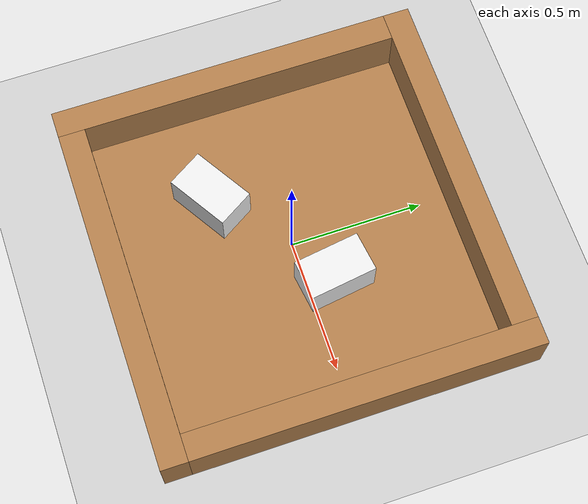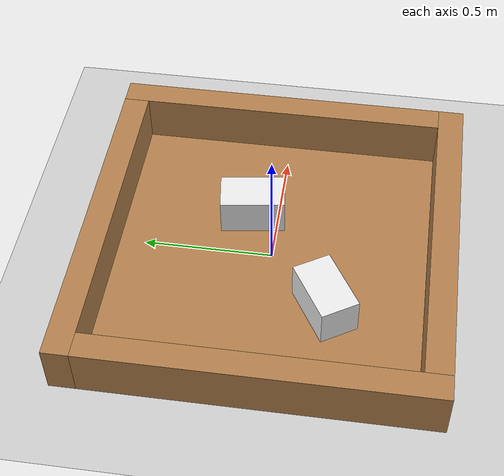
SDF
<sdf version="1.6">
 <world name="default">
  <light name="sun" type="directional">
   <pose>0 0 10 0 -0 0</pose>
   <diffuse>0.8 0.8 0.8 1</diffuse>
   <specular>0.1 0.1 0.1 1</specular>
   <attenuation>
    <range>1000</range>
    <constant>0.9</constant>
    <linear>0.01</linear>
    <quadratic>0.001</quadratic>
   </attenuation>
   <direction>-0.5 0.5 -1</direction>
  </light>
  <model name="ground_plane">
   <static>1</static>
   <link name="link">
    <collision name="collision">
     <geometry><plane><normal>0 0 1</normal><size>100 100</size></plane></geometry>
     <surface><friction><ode><mu>100</mu><mu2>50</mu2></ode></friction></surface>
    </collision>
    <visual name="visual">
     <cast_shadows>0</cast_shadows>
     <geometry><plane><normal>0 0 1</normal><size>100 100</size></plane></geometry>
     <material>
      <script><uri>file://media/materials/scripts/gazebo.material</uri><name>Gazebo/Grey</name></script>
     </material>
    </visual>
   </link>
  </model>
  <gravity>0 0 -9.8</gravity>
  <magnetic_field>6e-06 2.3e-05 -4.2e-05</magnetic_field>
  <atmosphere type="adiabatic"/>
  <physics name="default_physics" default="0" type="ode">
   <max_step_size>0.001</max_step_size>
   <real_time_factor>1</real_time_factor>
   <real_time_update_rate>1000</real_time_update_rate>
  </physics>
  <scene><ambient>0.4 0.4 0.4 1</ambient><background>0.7 0.7 0.7 1</background><shadows>0</shadows></scene>
  <spherical_coordinates>
   <surface_model>EARTH_WGS84</surface_model>
   <latitude_deg>0</latitude_deg>
   <longitude_deg>0</longitude_deg>
   <elevation>0</elevation>
   <heading_deg>0</heading_deg>
  </spherical_coordinates>
  <model name="arena_0">
   <link name="link_0">
    <pose>0 0 0.005 0 -0 0</pose>
    <inertial>
     <mass>1</mass>
     <inertia>
      <ixx>0.166667</ixx>
      <ixy>0</ixy>
      <ixz>0</ixz>
      <iyy>0.166667</iyy>
      <iyz>0</iyz>
      <izz>0.166667</izz>
     </inertia>
    </inertial>
    <visual name="visual">
     <geometry><box><size>1.2 1.2 0.01</size></box></geometry>
     <material>
      <lighting>1</lighting>
      <script><uri>file://media/materials/scripts/gazebo.material</uri><name>Gazebo/Wood</name></script>
      <ambient>0.3 0.3 0.3 1</ambient>
      <diffuse>0.7 0.7 0.7 1</diffuse>
      <specular>0.01 0.01 0.01 1</specular>
      <emissive>0 0 0 1</emissive>
      <shader type="vertex"><normal_map>__default__</normal_map></shader>
     </material>
    </visual>
    <collision name="collision">
     <geometry><box><size>1.2 1.2 0.01</size></box></geometry>
     <surface>
      <friction>
       <ode><mu>1</mu><mu2>1</mu2><fdir1>0 0 0</fdir1><slip1>0</slip1><slip2>0</slip2></ode>
       <torsional>
        <coefficient>1</coefficient>
        <patch_radius>0</patch_radius>
        <surface_radius>0</surface_radius>
        <use_patch_radius>1</use_patch_radius>
        <ode><slip>0</slip></ode>
       </torsional>
      </friction>
      <bounce><restitution_coefficient>0</restitution_coefficient><threshold>1e+06</threshold></bounce>
      <contact>
       <collide_without_contact>0</collide_without_contact>
       <collide_without_contact_bitmask>1</collide_without_contact_bitmask>
       <collide_bitmask>1</collide_bitmask>
       <ode>
        <soft_cfm>0</soft_cfm>
        <soft_erp>0.2</soft_erp>
        <kp>1e+13</kp>
        <kd>1</kd>
        <max_vel>0.01</max_vel>
        <min_depth>0</min_depth>
       </ode>
       <bullet>
        <split_impulse>1</split_impulse>
        <split_impulse_penetration_threshold>-0.01</split_impulse_penetration_threshold>
        <soft_cfm>0</soft_cfm>
        <soft_erp>0.2</soft_erp>
        <kp>1e+13</kp>
        <kd>1</kd>
       </bullet>
      </contact>
     </surface>
    </collision>
   </link>
   <link name="link_1">
    <pose>0.65 0.05 0.1 0 -0 0</pose>
    <inertial>
     <mass>1</mass>
     <inertia>
      <ixx>0.166667</ixx>
      <ixy>0</ixy>
      <ixz>0</ixz>
      <iyy>0.166667</iyy>
      <iyz>0</iyz>
      <izz>0.166667</izz>
     </inertia>
    </inertial>
    <visual name="visual">
     <geometry><box><size>0.1 1.3 0.2</size></box></geometry>
     <material>
      <lighting>1</lighting>
      <script><uri>file://media/materials/scripts/gazebo.material</uri><name>Gazebo/Wood</name></script>
      <ambient>0.3 0.3 0.3 1</ambient>
      <diffuse>0.7 0.7 0.7 1</diffuse>
      <specular>0.01 0.01 0.01 1</specular>
      <emissive>0 0 0 1</emissive>
      <shader type="vertex"><normal_map>__default__</normal_map></shader>
     </material>
    </visual>
    <collision name="collision">
     <geometry><box><size>0.1 1.3 0.2</size></box></geometry>
     <surface>
      <friction>
       <ode><mu>1</mu><mu2>1</mu2><fdir1>0 0 0</fdir1><slip1>0</slip1><slip2>0</slip2></ode>
       <torsional>
        <coefficient>1</coefficient>
        <patch_radius>0</patch_radius>
        <surface_radius>0</surface_radius>
        <use_patch_radius>1</use_patch_radius>
        <ode><slip>0</slip></ode>
       </torsional>
      </friction>
      <bounce><restitution_coefficient>0</restitution_coefficient><threshold>1e+06</threshold></bounce>
      <contact>
       <collide_without_contact>0</collide_without_contact>
       <collide_without_contact_bitmask>1</collide_without_contact_bitmask>
       <collide_bitmask>1</collide_bitmask>
       <ode>
        <soft_cfm>0</soft_cfm>
        <soft_erp>0.2</soft_erp>
        <kp>1e+13</kp>
        <kd>1</kd>
        <max_vel>0.01</max_vel>
        <min_depth>0</min_depth>
       </ode>
       <bullet>
        <split_impulse>1</split_impulse>
        <split_impulse_penetration_threshold>-0.01</split_impulse_penetration_threshold>
        <soft_cfm>0</soft_cfm>
        <soft_erp>0.2</soft_erp>
        <kp>1e+13</kp>
        <kd>1</kd>
       </bullet>
      </contact>
     </surface>
    </collision>
   </link>
   <link name="link_1_clone">
    <pose>-0.65 -0.05 0.1 0 -0 0</pose>
    <inertial>
     <mass>1</mass>
     <inertia>
      <ixx>0.166667</ixx>
      <ixy>0</ixy>
      <ixz>0</ixz>
      <iyy>0.166667</iyy>
      <iyz>0</iyz>
      <izz>0.166667</izz>
     </inertia>
    </inertial>
    <visual name="visual">
     <geometry><box><size>0.1 1.3 0.2</size></box></geometry>
     <material>
      <lighting>1</lighting>
      <script><uri>file://media/materials/scripts/gazebo.material</uri><name>Gazebo/Wood</name></script>
      <ambient>0.3 0.3 0.3 1</ambient>
      <diffuse>0.7 0.7 0.7 1</diffuse>
      <specular>0.01 0.01 0.01 1</specular>
      <emissive>0 0 0 1</emissive>
      <shader type="vertex"><normal_map>__default__</normal_map></shader>
     </material>
    </visual>
    <collision name="collision">
     <geometry><box><size>0.1 1.3 0.2</size></box></geometry>
     <surface>
      <friction>
       <ode><mu>1</mu><mu2>1</mu2><fdir1>0 0 0</fdir1><slip1>0</slip1><slip2>0</slip2></ode>
       <torsional>
        <coefficient>1</coefficient>
        <patch_radius>0</patch_radius>
        <surface_radius>0</surface_radius>
        <use_patch_radius>1</use_patch_radius>
        <ode><slip>0</slip></ode>
       </torsional>
      </friction>
      <bounce><restitution_coefficient>0</restitution_coefficient><threshold>1e+06</threshold></bounce>
      <contact>
       <collide_without_contact>0</collide_without_contact>
       <collide_without_contact_bitmask>1</collide_without_contact_bitmask>
       <collide_bitmask>1</collide_bitmask>
       <ode>
        <soft_cfm>0</soft_cfm>
        <soft_erp>0.2</soft_erp>
        <kp>1e+13</kp>
        <kd>1</kd>
        <max_vel>0.01</max_vel>
        <min_depth>0</min_depth>
       </ode>
       <bullet>
        <split_impulse>1</split_impulse>
        <split_impulse_penetration_threshold>-0.01</split_impulse_penetration_threshold>
        <soft_cfm>0</soft_cfm>
        <soft_erp>0.2</soft_erp>
        <kp>1e+13</kp>
        <kd>1</kd>
       </bullet>
      </contact>
     </surface>
    </collision>
   </link>
   <link name="link_1_clone_0">
    <pose>0.05 -0.65 0.1 0 -0 1.5708</pose>
    <inertial>
     <mass>1</mass>
     <inertia>
      <ixx>0.166667</ixx>
      <ixy>0</ixy>
      <ixz>0</ixz>
      <iyy>0.166667</iyy>
      <iyz>0</iyz>
      <izz>0.166667</izz>
     </inertia>
    </inertial>
    <visual name="visual">
     <geometry><box><size>0.1 1.3 0.2</size></box></geometry>
     <material>
      <lighting>1</lighting>
      <script><uri>file://media/materials/scripts/gazebo.material</uri><name>Gazebo/Wood</name></script>
      <ambient>0.3 0.3 0.3 1</ambient>
      <diffuse>0.7 0.7 0.7 1</diffuse>
      <specular>0.01 0.01 0.01 1</specular>
      <emissive>0 0 0 1</emissive>
      <shader type="vertex"><normal_map>__default__</normal_map></shader>
     </material>
    </visual>
    <collision name="collision">
     <geometry><box><size>0.1 1.3 0.2</size></box></geometry>
     <surface>
      <friction>
       <ode><mu>1</mu><mu2>1</mu2><fdir1>0 0 0</fdir1><slip1>0</slip1><slip2>0</slip2></ode>
       <torsional>
        <coefficient>1</coefficient>
        <patch_radius>0</patch_radius>
        <surface_radius>0</surface_radius>
        <use_patch_radius>1</use_patch_radius>
        <ode><slip>0</slip></ode>
       </torsional>
      </friction>
      <bounce><restitution_coefficient>0</restitution_coefficient><threshold>1e+06</threshold></bounce>
      <contact>
       <collide_without_contact>0</collide_without_contact>
       <collide_without_contact_bitmask>1</collide_without_contact_bitmask>
       <collide_bitmask>1</collide_bitmask>
       <ode>
        <soft_cfm>0</soft_cfm>
        <soft_erp>0.2</soft_erp>
        <kp>1e+13</kp>
        <kd>1</kd>
        <max_vel>0.01</max_vel>
        <min_depth>0</min_depth>
       </ode>
       <bullet>
        <split_impulse>1</split_impulse>
        <split_impulse_penetration_threshold>-0.01</split_impulse_penetration_threshold>
        <soft_cfm>0</soft_cfm>
        <soft_erp>0.2</soft_erp>
        <kp>1e+13</kp>
        <kd>1</kd>
       </bullet>
      </contact>
     </surface>
    </collision>
   </link>
   <link name="link_1_clone_0_clone">
    <pose>-0.05 0.65 0.1 0 -0 1.5708</pose>
    <inertial>
     <mass>1</mass>
     <inertia>
      <ixx>0.166667</ixx>
      <ixy>0</ixy>
      <ixz>0</ixz>
      <iyy>0.166667</iyy>
      <iyz>0</iyz>
      <izz>0.166667</izz>
     </inertia>
    </inertial>
    <visual name="visual">
     <geometry><box><size>0.1 1.3 0.2</size></box></geometry>
     <material>
      <lighting>1</lighting>
      <script><uri>file://media/materials/scripts/gazebo.material</uri><name>Gazebo/Wood</name></script>
      <ambient>0.3 0.3 0.3 1</ambient>
      <diffuse>0.7 0.7 0.7 1</diffuse>
      <specular>0.01 0.01 0.01 1</specular>
      <emissive>0 0 0 1</emissive>
      <shader type="vertex"><normal_map>__default__</normal_map></shader>
     </material>
    </visual>
    <collision name="collision">
     <geometry><box><size>0.1 1.3 0.2</size></box></geometry>
     <surface>
      <friction>
       <ode><mu>1</mu><mu2>1</mu2><fdir1>0 0 0</fdir1><slip1>0</slip1><slip2>0</slip2></ode>
       <torsional>
        <coefficient>1</coefficient>
        <patch_radius>0</patch_radius>
        <surface_radius>0</surface_radius>
        <use_patch_radius>1</use_patch_radius>
        <ode><slip>0</slip></ode>
       </torsional>
      </friction>
      <bounce><restitution_coefficient>0</restitution_coefficient><threshold>1e+06</threshold></bounce>
      <contact>
       <collide_without_contact>0</collide_without_contact>
       <collide_without_contact_bitmask>1</collide_without_contact_bitmask>
       <collide_bitmask>1</collide_bitmask>
       <ode>
        <soft_cfm>0</soft_cfm>
        <soft_erp>0.2</soft_erp>
        <kp>1e+13</kp>
        <kd>1</kd>
        <max_vel>0.01</max_vel>
        <min_depth>0</min_depth>
       </ode>
       <bullet>
        <split_impulse>1</split_impulse>
        <split_impulse_penetration_threshold>-0.01</split_impulse_penetration_threshold>
        <soft_cfm>0</soft_cfm>
        <soft_erp>0.2</soft_erp>
        <kp>1e+13</kp>
        <kd>1</kd>
       </bullet>
      </contact>
     </surface>
    </collision>
   </link>
   <joint name="link_0_JOINT_0" type="fixed">
    <parent>link_0</parent>
    <child>link_1_clone_0_clone</child>
    <physics>
     <ode><limit><cfm>0</cfm><erp>0.2</erp></limit><suspension><cfm>0</cfm><erp>0.2</erp></suspension></ode>
    </physics>
   </joint>
   <joint name="link_0_JOINT_1" type="fixed">
    <parent>link_0</parent>
    <child>link_1_clone</child>
    <physics>
     <ode><limit><cfm>0</cfm><erp>0.2</erp></limit><suspension><cfm>0</cfm><erp>0.2</erp></suspension></ode>
    </physics>
   </joint>
   <joint name="link_0_JOINT_2" type="fixed">
    <parent>link_0</parent>
    <child>link_1_clone_0</child>
    <physics>
     <ode><limit><cfm>0</cfm><erp>0.2</erp></limit><suspension><cfm>0</cfm><erp>0.2</erp></suspension></ode>
    </physics>
   </joint>
   <joint name="link_0_JOINT_3" type="revolute">
    <parent>link_0</parent>
    <child>link_1</child>
    <axis>
     <xyz>1 0 0</xyz>
     <use_parent_model_frame>0</use_parent_model_frame>
     <limit>
      <lower>-1.79769e+308</lower>
      <upper>1.79769e+308</upper>
      <effort>-1</effort>
      <velocity>-1</velocity>
     </limit>
     <dynamics>
      <spring_reference>0</spring_reference>
      <spring_stiffness>0</spring_stiffness>
      <damping>0</damping>
      <friction>0</friction>
     </dynamics>
    </axis>
    <physics>
     <ode><limit><cfm>0</cfm><erp>0.2</erp></limit><suspension><cfm>0</cfm><erp>0.2</erp></suspension></ode>
    </physics>
   </joint>
   <static>0</static>
   <pose>-7e-05 -2e-06 0 0 -0 0.000443</pose>
  </model>
  <model name="box_0">
   <link name="link">
    <inertial>
     <mass>1</mass>
     <inertia>
      <ixx>0.166667</ixx>
      <ixy>0</ixy>
      <ixz>0</ixz>
      <iyy>0.166667</iyy>
      <iyz>0</iyz>
      <izz>0.166667</izz>
     </inertia>
    </inertial>
    <visual name="visual">
     <geometry><box><size>0.25 0.15 0.15</size></box></geometry>
     <material>
      <script><name>Gazebo/White</name><uri>file://media/materials/scripts/gazebo.material</uri></script>
      <ambient>0.3 0.3 0.3 1</ambient>
      <diffuse>0.7 0.7 0.7 1</diffuse>
      <specular>0.01 0.01 0.01 1</specular>
      <emissive>0 0 0 1</emissive>
      <shader type="vertex"><normal_map>__default__</normal_map></shader>
     </material>
    </visual>
    <collision name="collision">
     <geometry><box><size>0.25 0.15 0.15</size></box></geometry>
     <surface>
      <friction>
       <ode><mu>1</mu><mu2>1</mu2><fdir1>0 0 0</fdir1><slip1>0</slip1><slip2>0</slip2></ode>
       <torsional>
        <coefficient>1</coefficient>
        <patch_radius>0</patch_radius>
        <surface_radius>0</surface_radius>
        <use_patch_radius>1</use_patch_radius>
        <ode><slip>0</slip></ode>
       </torsional>
      </friction>
      <bounce><restitution_coefficient>0</restitution_coefficient><threshold>1e+06</threshold></bounce>
      <contact>
       <collide_without_contact>0</collide_without_contact>
       <collide_without_contact_bitmask>1</collide_without_contact_bitmask>
       <collide_bitmask>1</collide_bitmask>
       <ode>
        <soft_cfm>0</soft_cfm>
        <soft_erp>0.2</soft_erp>
        <kp>1e+13</kp>
        <kd>1</kd>
        <max_vel>0.01</max_vel>
        <min_depth>0</min_depth>
       </ode>
       <bullet>
        <split_impulse>1</split_impulse>
        <split_impulse_penetration_threshold>-0.01</split_impulse_penetration_threshold>
        <soft_cfm>0</soft_cfm>
        <soft_erp>0.2</soft_erp>
        <kp>1e+13</kp>
        <kd>1</kd>
       </bullet>
      </contact>
     </surface>
    </collision>
   </link>
   <static>0</static>
   <pose>-0.245437 -0.231487 0.087643 0 -0 0.549683</pose>
  </model>
  <model name="box_0_clone">
   <link name="link">
    <inertial>
     <mass>1</mass>
     <inertia>
      <ixx>0.166667</ixx>
      <ixy>0</ixy>
      <ixz>0</ixz>
      <iyy>0.166667</iyy>
      <iyz>0</iyz>
      <izz>0.166667</izz>
     </inertia>
    </inertial>
    <visual name="visual">
     <geometry><box><size>0.25 0.15 0.15</size></box></geometry>
     <material>
      <script><name>Gazebo/White</name><uri>file://media/materials/scripts/gazebo.material</uri></script>
      <ambient>0.3 0.3 0.3 1</ambient>
      <diffuse>0.7 0.7 0.7 1</diffuse>
      <specular>0.01 0.01 0.01 1</specular>
      <emissive>0 0 0 1</emissive>
      <shader type="vertex"><normal_map>__default__</normal_map></shader>
     </material>
    </visual>
    <collision name="collision">
     <geometry><box><size>0.25 0.15 0.15</size></box></geometry>
     <surface>
      <friction>
       <ode><mu>1</mu><mu2>1</mu2><fdir1>0 0 0</fdir1><slip1>0</slip1><slip2>0</slip2></ode>
       <torsional>
        <coefficient>1</coefficient>
        <patch_radius>0</patch_radius>
        <surface_radius>0</surface_radius>
        <use_patch_radius>1</use_patch_radius>
        <ode><slip>0</slip></ode>
       </torsional>
      </friction>
      <bounce><restitution_coefficient>0</restitution_coefficient><threshold>1e+06</threshold></bounce>
      <contact>
       <collide_without_contact>0</collide_without_contact>
       <collide_without_contact_bitmask>1</collide_without_contact_bitmask>
       <collide_bitmask>1</collide_bitmask>
       <ode>
        <soft_cfm>0</soft_cfm>
        <soft_erp>0.2</soft_erp>
        <kp>1e+13</kp>
        <kd>1</kd>
        <max_vel>0.01</max_vel>
        <min_depth>0</min_depth>
       </ode>
       <bullet>
        <split_impulse>1</split_impulse>
        <split_impulse_penetration_threshold>-0.01</split_impulse_penetration_threshold>
        <soft_cfm>0</soft_cfm>
        <soft_erp>0.2</soft_erp>
        <kp>1e+13</kp>
        <kd>1</kd>
       </bullet>
      </contact>
     </surface>
    </collision>
   </link>
   <static>0</static>
   <pose>0.182711 0.100494 0.087643 0 -0 1.71091</pose>
  </model>
 </world>
</sdf>
